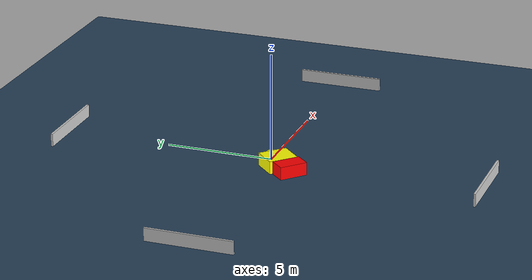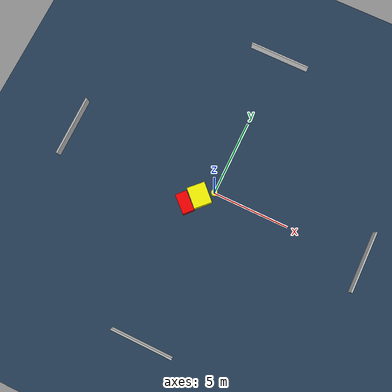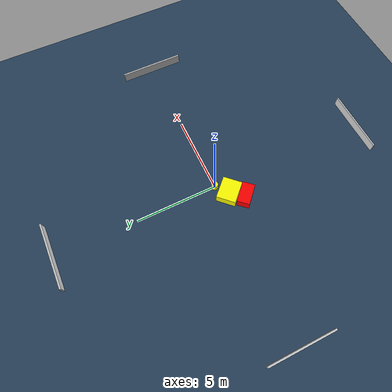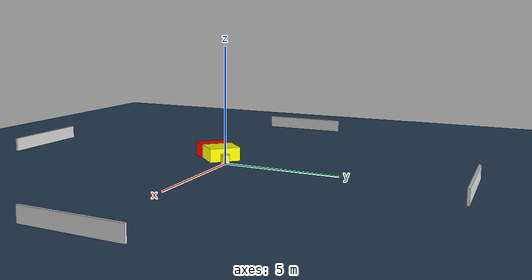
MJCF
<?xml version="1.0" ?>
<mujoco model="generated_environment">
  <option timestep="0.01" integrator="RK4" cone="elliptic"/>
  <default>
    <geom density="1"/>
  </default>
  <asset>
    <texture builtin="gradient" height="3072" name="skybox" rgb1="0.3 0.5 0.7" rgb2="0 0 0" type="skybox" width="512"/>
    <texture builtin="checker" height="300" name="groundplane" rgb1="0.2 0.3 0.4" rgb2="0.1 0.2 0.3" type="2d" width="300"/>
    <material name="groundplane" reflectance="0.2" texrepeat="5 5" texture="groundplane"/>
  </asset>
  <worldbody>
    <light dir="0 0 -1" directional="true" pos="0 0 1.5"/>
    <geom condim="3" friction="0.5 0.005 0.001" material="groundplane" name="floor" pos="0 0 0" size="0 0 0.05" type="plane"/>
    <body name="walls">
      <geom name="wall_1" condim="4" pos="-10.0 0.0 0.3" rgba="0.800000011920929 0.800000011920929 0.800000011920929 1.0" size="0.05 2.0 0.3" type="box"/>
      <geom name="wall_2" condim="4" pos="10.0 0.0 0.3" rgba="0.800000011920929 0.800000011920929 0.800000011920929 1.0" size="0.05 2.0 0.3" type="box"/>
      <geom name="wall_3" condim="4" pos="0.0 -10.0 0.3" rgba="0.800000011920929 0.800000011920929 0.800000011920929 1.0" size="2.0 0.05 0.3" type="box"/>
      <geom name="wall_4" condim="4" pos="0.0 10.0 0.3" rgba="0.800000011920929 0.800000011920929 0.800000011920929 1.0" size="2.0 0.05 0.3" type="box"/>
    </body>
    <body name="robot">
      <joint name="joint_x" type="slide" pos="0 0 0" axis="1 0 0"/>
      <joint name="joint_y" type="slide" pos="0 0 0" axis="0 1 0"/>
      <geom name="robot" type="cylinder" pos="0.0 0.0 0.2" size="0.2 0.2 0.0" mass="5.0" friction="1.0 0.005 0.0001" condim="4" rgba="1.0 1.0 0.0 1.0"/>
    </body>
    <body name="obstacle_1_movable">
      <geom name="obstacle_1_movable" condim="4" pos="-0.7530548279386132 -0.5797561234035493 0.3" euler="0 0 45.53943856228698" friction="0.0 0.005 0.001" rgba="1.0 1.0 0.0 1.0" size="0.5832590547348325 0.6849595673088811 0.3" type="box" mass="0.1"/>
      <joint type="free"/>
    </body>
    <body name="obstacle_2_static">
      <geom name="obstacle_2_static" condim="4" pos="-1.3769180530450589 -1.3661618524923556 0.3" euler="0 0 317.5264465670246" friction="0.0 0.005 0.001" rgba="1.0 0.0 0.0 1.0" size="0.6522410281038842 0.380063716916931 0.3" type="box"/>
    </body>
  </worldbody>
  <actuator>
    <motor name="actuator_x" joint="joint_x" gear="1" ctrlrange="-1 1"/>
    <motor name="actuator_y" joint="joint_y" gear="1" ctrlrange="-1 1"/>
  </actuator>
</mujoco>
